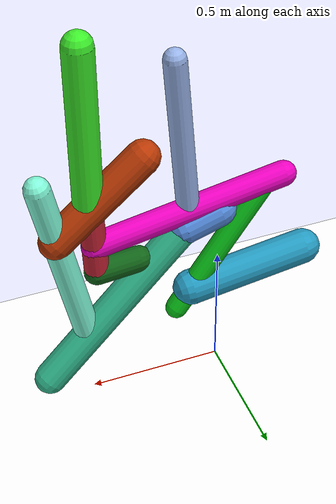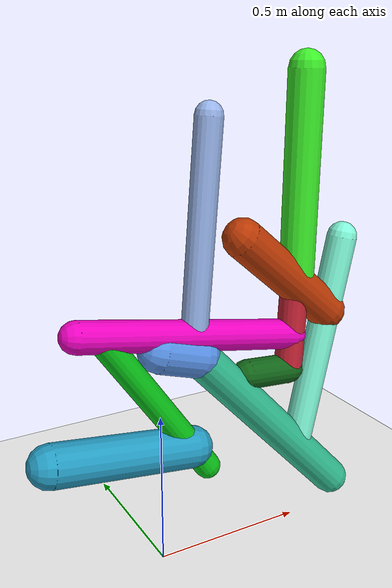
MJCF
<mujoco model="morphology">
  <option timestep="0.01"/>
  <default>
    <default class="/"/>
    <default class="0/"/>
    <default class="0/1/"/>
    <default class="0/1/2/"/>
    <default class="0/1/2/3/"/>
    <default class="0/1/2/3/4/"/>
    <default class="0/1/2/3/5/"/>
    <default class="0/1/2/3/5/6/"/>
    <default class="0/1/2/3/5/6/7/"/>
    <default class="0/1/2/3/5/6/8/"/>
    <default class="0/1/2/3/5/6/8/9/"/>
    <default class="0/1/2/3/5/10/"/>
  </default>
  <asset>
    <texture name="texplane" type="2d" builtin="checker" rgb1="0.10000000000000001 0.20000000000000001 0.29999999999999999" rgb2="0.20000000000000001 0.29999999999999999 0.40000000000000002" width="300" height="300"/>
    <material name="MatPlane" class="/" texture="texplane" texrepeat="20 20" specular="1" shininess="1" reflectance="0.5"/>
  </asset>
  <worldbody>
    <light name="//unnamed_light_0" class="/" directional="true" pos="0 0 1.5" dir="0 0 -1.3" cutoff="100" exponent="1" diffuse="1 1 1" specular="0.10000000000000001 0.10000000000000001 0.10000000000000001"/>
    <geom name="ground" class="/" type="plane" size="15 15 0.5" material="MatPlane" rgba="1 1 1 1"/>
    <site name="body" class="/" size="9.9999999999999995e-07 9.9999999999999995e-07 9.9999999999999995e-07" pos="0 0 0.71546260118484495"/>
    <body pos="0 0 0.71546260118484495" name="0/">
      <joint name="0/rootx/" class="/" type="slide" axis="1 0 0" limited="false" stiffness="0" armature="0" damping="0"/>
      <joint name="0/rootz/" class="/" type="slide" axis="0 0 1" limited="false" stiffness="0" armature="0" damping="0"/>
      <joint name="0/rooty/" class="/" type="hinge" axis="0 1 0" limited="false" stiffness="0" armature="0" damping="0"/>
      <geom name="0/geom" class="0/" type="capsule" contype="1" conaffinity="1" condim="3" size="0.065865833401387242" rgba="0.33875008901160986 0.55895777309688344 0.88381729665050879 1" friction="0.59999999999999998 0.10000000000000001 0.10000000000000001" fromto="0 0 0 0.1335228742443153 0 -0.042461723173313759"/>
      <site name="0/end0" class="0/" size="0.0050000000000000001" pos="0.1335228742443153 0 -0.042461723173313759"/>
      <site name="0/attach1" class="0/" size="9.9999999999999995e-07 9.9999999999999995e-07 9.9999999999999995e-07" pos="0.13263131488555202 0 -0.042178197620867108"/>
      <body pos="0.13263131488555202 0 -0.042178197620867108" name="0/1/">
        <joint name="0/1/joint/" class="0/" type="hinge" axis="0 1 0" limited="true" range="-43.648127787979753 43.648127787979753"/>
        <geom name="0/1/geom" class="0/1/" type="capsule" contype="1" conaffinity="1" condim="3" size="0.060271666774311221" rgba="0.19386613205528169 0.74412418637726729 0.5693766483287469 1" friction="0.59999999999999998 0.10000000000000001 0.10000000000000001" fromto="0 0 0 0.5366663890648502 0 -0.57328440674970271"/>
        <site name="0/1/end1" class="0/1/" size="0.0050000000000000001" pos="0.5366663890648502 0 -0.57328440674970271"/>
        <site name="0/1/attach2" class="0/1/" size="9.9999999999999995e-07 9.9999999999999995e-07 9.9999999999999995e-07" pos="0.37736657533251761 0 -0.40311518976182287"/>
        <body pos="0.37736657533251761 0 -0.40311518976182287" name="0/1/2/">
          <joint name="0/1/2/joint/" class="0/1/" type="hinge" axis="0 1 0" limited="true" range="-51.092948914477049 51.092948914477049"/>
          <geom name="0/1/2/geom" class="0/1/2/" type="capsule" contype="1" conaffinity="1" condim="3" size="0.048160865752260293" rgba="0.50356188524173273 0.97856039023477692 0.85080418824759796 1" friction="0.59999999999999998 0.10000000000000001 0.10000000000000001" fromto="0 0 0 0.14991278150027798 0 0.71196554073385965"/>
          <site name="0/1/2/end2" class="0/1/2/" size="0.0050000000000000001" pos="0.14991278150027798 0 0.71196554073385965"/>
          <site name="0/1/2/attach3" class="0/1/2/" size="9.9999999999999995e-07 9.9999999999999995e-07 9.9999999999999995e-07" pos="0.099453952796418735 0 0.47232655262747375"/>
          <body pos="0.099453952796418735 0 0.47232655262747375" name="0/1/2/3/">
            <joint name="0/1/2/3/joint/" class="0/1/2/" type="hinge" axis="0 1 0" limited="true" range="-44.392663056005894 44.392663056005894"/>
            <geom name="0/1/2/3/geom" class="0/1/2/3/" type="capsule" contype="1" conaffinity="1" condim="3" size="0.062944282877411856" rgba="0.73104719005040353 0.22277930453635209 0.018163170836909326 1" friction="0.59999999999999998 0.10000000000000001 0.10000000000000001" fromto="0 0 0 -0.32633426507724561 0 0.27723400119572106"/>
            <site name="0/1/2/3/end3" class="0/1/2/3/" size="0.0050000000000000001" pos="-0.32633426507724561 0 0.27723400119572106"/>
            <site name="0/1/2/3/attach4" class="0/1/2/3/" size="9.9999999999999995e-07 9.9999999999999995e-07 9.9999999999999995e-07" pos="-0.12412892200741994 0 0.10545248046227351"/>
            <body pos="-0.12412892200741994 0 0.10545248046227351" name="0/1/2/3/4/">
              <joint name="0/1/2/3/4/joint/" class="0/1/2/3/" type="hinge" axis="0 1 0" limited="true" range="-62.30762113729304 62.30762113729304"/>
              <geom name="0/1/2/3/4/geom" class="0/1/2/3/4/" type="capsule" contype="1" conaffinity="1" condim="3" size="0.054761301124373836" rgba="0.23745811774755943 0.93481925036490288 0.16404493333496006 1" friction="0.59999999999999998 0.10000000000000001 0.10000000000000001" fromto="0 0 0 0.0067142368710511047 0 0.64909729299502827"/>
              <site name="0/1/2/3/4/end4" class="0/1/2/3/4/" size="0.0050000000000000001" pos="0.0067142368710511047 0 0.64909729299502827"/>
            </body>
            <site name="0/1/2/3/attach5" class="0/1/2/3/" size="9.9999999999999995e-07 9.9999999999999995e-07 9.9999999999999995e-07" pos="-0.1293401816938424 0 0.10987965385086902"/>
            <body pos="-0.1293401816938424 0 0.10987965385086902" name="0/1/2/3/5/">
              <geom name="0/1/2/3/5/geom" class="0/1/2/3/5/" type="capsule" contype="1" conaffinity="1" condim="3" size="0.045634582691331298" rgba="0.77627001946903196 0.14022990163410176 0.21361300258119953 1" friction="0.59999999999999998 0.10000000000000001 0.10000000000000001" fromto="0 0 0 -0.014132312968346161 0 -0.29202049927525642"/>
              <site name="0/1/2/3/5/end5" class="0/1/2/3/5/" size="0.0050000000000000001" pos="-0.014132312968346161 0 -0.29202049927525642"/>
              <site name="0/1/2/3/5/attach6" class="0/1/2/3/5/" size="9.9999999999999995e-07 9.9999999999999995e-07 9.9999999999999995e-07" pos="-0.0081910367494120919 0 -0.16925401004795404"/>
              <body pos="-0.0081910367494120919 0 -0.16925401004795404" name="0/1/2/3/5/6/">
                <joint name="0/1/2/3/5/6/joint/" class="0/1/2/3/5/" type="hinge" axis="0 1 0" limited="true" range="-67.657647455402966 67.657647455402966"/>
                <geom name="0/1/2/3/5/6/geom" class="0/1/2/3/5/6/" type="capsule" contype="1" conaffinity="1" condim="3" size="0.048276854402586146" rgba="0.92699289361571058 0.0040273471579008735 0.75311757604319762 1" friction="0.59999999999999998 0.10000000000000001 0.10000000000000001" fromto="0 0 0 -0.72257811940357397 0 0.12501378523662376"/>
                <site name="0/1/2/3/5/6/end6" class="0/1/2/3/5/6/" size="0.0050000000000000001" pos="-0.72257811940357397 0 0.12501378523662376"/>
                <site name="0/1/2/3/5/6/attach7" class="0/1/2/3/5/6/" size="9.9999999999999995e-07 9.9999999999999995e-07 9.9999999999999995e-07" pos="-0.35461024798501878 0 0.061351386367603546"/>
                <body pos="-0.35461024798501878 0 0.061351386367603546" name="0/1/2/3/5/6/7/">
                  <joint name="0/1/2/3/5/6/7/joint/" class="0/1/2/3/5/6/" type="hinge" axis="0 1 0" limited="true" range="-64.428480063650611 64.428480063650611"/>
                  <geom name="0/1/2/3/5/6/7/geom" class="0/1/2/3/5/6/7/" type="capsule" contype="1" conaffinity="1" condim="3" size="0.041565496969854558" rgba="0.59293558449319206 0.70159402691927553 0.91086153344600973 1" friction="0.59999999999999998 0.10000000000000001 0.10000000000000001" fromto="0 0 0 0.049507465079937196 0 0.63239684220885062"/>
                  <site name="0/1/2/3/5/6/7/end7" class="0/1/2/3/5/6/7/" size="0.0050000000000000001" pos="0.049507465079937196 0 0.63239684220885062"/>
                </body>
                <site name="0/1/2/3/5/6/attach8" class="0/1/2/3/5/6/" size="9.9999999999999995e-07 9.9999999999999995e-07 9.9999999999999995e-07" pos="-0.65393185808913168 0 0.11313724380973372"/>
                <body pos="-0.65393185808913168 0 0.11313724380973372" name="0/1/2/3/5/6/8/">
                  <joint name="0/1/2/3/5/6/8/joint/" class="0/1/2/3/5/6/" type="hinge" axis="0 1 0" limited="true" range="-57.700153847517178 57.700153847517178"/>
                  <geom name="0/1/2/3/5/6/8/geom" class="0/1/2/3/5/6/8/" type="capsule" contype="1" conaffinity="1" condim="3" size="0.042055697673304367" rgba="0.038329099110906983 0.77800858336696044 0.096959253422674641 1" friction="0.59999999999999998 0.10000000000000001 0.10000000000000001" fromto="0 0 0 0.34416950322073325 0 -0.50430853191965119"/>
                  <site name="0/1/2/3/5/6/8/end8" class="0/1/2/3/5/6/8/" size="0.0050000000000000001" pos="0.34416950322073325 0 -0.50430853191965119"/>
                  <site name="0/1/2/3/5/6/8/attach9" class="0/1/2/3/5/6/8/" size="9.9999999999999995e-07 9.9999999999999995e-07 9.9999999999999995e-07" pos="0.28739533611616491 0 -0.42111784652907824"/>
                  <body pos="0.28739533611616491 0 -0.42111784652907824" name="0/1/2/3/5/6/8/9/">
                    <joint name="0/1/2/3/5/6/8/9/joint/" class="0/1/2/3/5/6/8/" type="hinge" axis="0 1 0" limited="true" range="-69.19932906026196 69.19932906026196"/>
                    <geom name="0/1/2/3/5/6/8/9/geom" class="0/1/2/3/5/6/8/9/" type="capsule" contype="1" conaffinity="1" condim="3" size="0.067362434019309775" rgba="0.14324827040847998 0.60842531217339579 0.75689847463266891 1" friction="0.59999999999999998 0.10000000000000001 0.10000000000000001" fromto="0 0 0 -0.45484151447997506 0 0.06275591299595995"/>
                    <site name="0/1/2/3/5/6/8/9/end9" class="0/1/2/3/5/6/8/9/" size="0.0050000000000000001" pos="-0.45484151447997506 0 0.06275591299595995"/>
                  </body>
                </body>
              </body>
              <site name="0/1/2/3/5/attach10" class="0/1/2/3/5/" size="9.9999999999999995e-07 9.9999999999999995e-07 9.9999999999999995e-07" pos="-0.013973922085767988 0 -0.28874761784992103"/>
              <body pos="-0.013973922085767988 0 -0.28874761784992103" name="0/1/2/3/5/10/">
                <joint name="0/1/2/3/5/10/joint/" class="0/1/2/3/5/" type="hinge" axis="0 1 0" limited="true" range="-60.552354967744584 60.552354967744584"/>
                <geom name="0/1/2/3/5/10/geom" class="0/1/2/3/5/10/" type="capsule" contype="1" conaffinity="1" condim="3" size="0.048477702441807172" rgba="0.064831359327536586 0.39096023526329804 0.092713991100353499 1" friction="0.59999999999999998 0.10000000000000001 0.10000000000000001" fromto="0 0 0 -0.15961601350981036 0 0.012699258305143291"/>
                <site name="0/1/2/3/5/10/end10" class="0/1/2/3/5/10/" size="0.0050000000000000001" pos="-0.15961601350981036 0 0.012699258305143291"/>
              </body>
            </body>
          </body>
        </body>
      </body>
      <camera name="0/side" class="0/" mode="trackcom" pos="0.40000000000000002 -4 0.20000000000000001" quat="0.70699999999999996 0.70699999999999996 0 0"/>
    </body>
  </worldbody>
  <actuator>
    <motor name="0/1/motor" class="0/1/" ctrllimited="true" ctrlrange="-1 1" gear="66" joint="0/1/joint/"/>
    <motor name="0/1/2/motor" class="0/1/2/" ctrllimited="true" ctrlrange="-1 1" gear="88" joint="0/1/2/joint/"/>
    <motor name="0/1/2/3/motor" class="0/1/2/3/" ctrllimited="true" ctrlrange="-1 1" gear="57" joint="0/1/2/3/joint/"/>
    <motor name="0/1/2/3/4/motor" class="0/1/2/3/4/" ctrllimited="true" ctrlrange="-1 1" gear="58" joint="0/1/2/3/4/joint/"/>
    <motor name="0/1/2/3/5/6/motor" class="0/1/2/3/5/6/" ctrllimited="true" ctrlrange="-1 1" gear="79" joint="0/1/2/3/5/6/joint/"/>
    <motor name="0/1/2/3/5/6/7/motor" class="0/1/2/3/5/6/7/" ctrllimited="true" ctrlrange="-1 1" gear="89" joint="0/1/2/3/5/6/7/joint/"/>
    <motor name="0/1/2/3/5/6/8/motor" class="0/1/2/3/5/6/8/" ctrllimited="true" ctrlrange="-1 1" gear="54" joint="0/1/2/3/5/6/8/joint/"/>
    <motor name="0/1/2/3/5/6/8/9/motor" class="0/1/2/3/5/6/8/9/" ctrllimited="true" ctrlrange="-1 1" gear="83" joint="0/1/2/3/5/6/8/9/joint/"/>
    <motor name="0/1/2/3/5/10/motor" class="0/1/2/3/5/10/" ctrllimited="true" ctrlrange="-1 1" gear="59" joint="0/1/2/3/5/10/joint/"/>
  </actuator>
  <sensor>
    <subtreelinvel name="velocity" body="0/"/>
  </sensor>
</mujoco>
